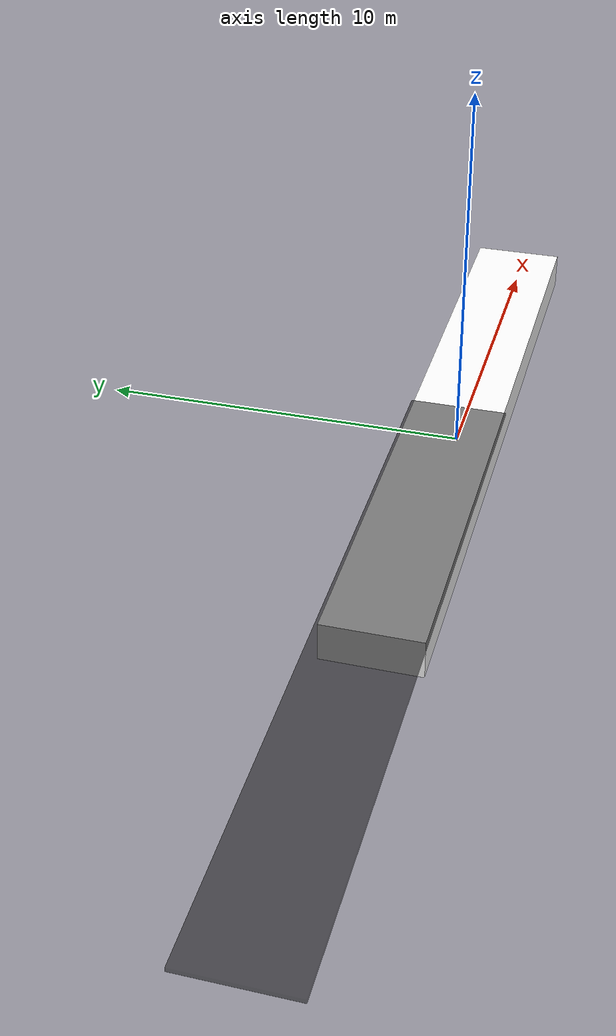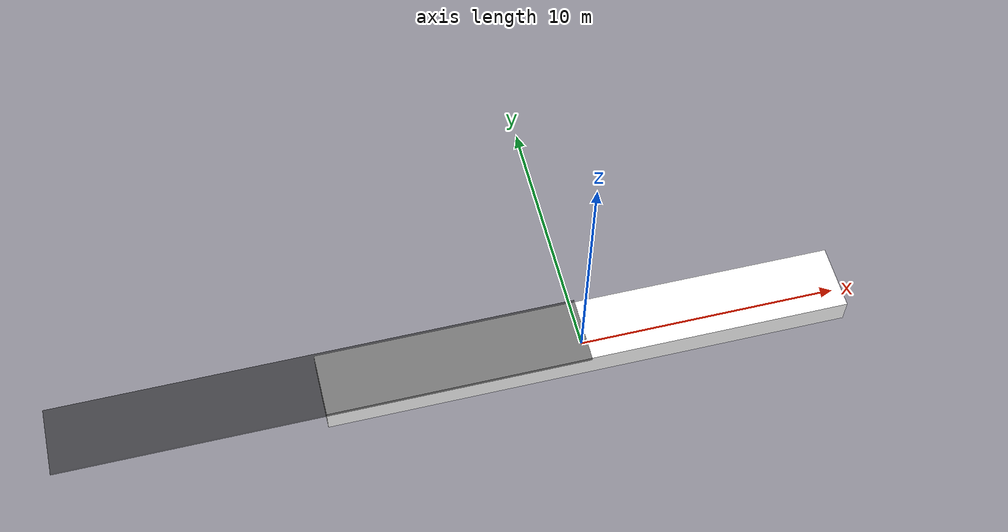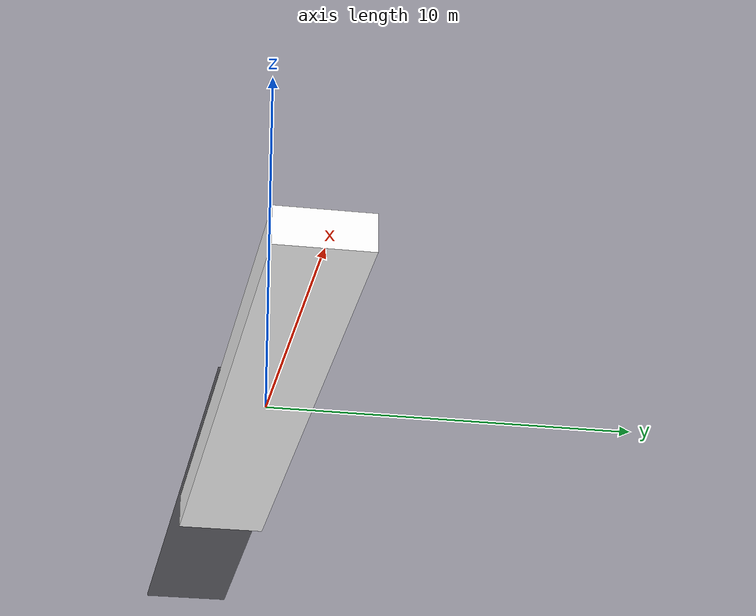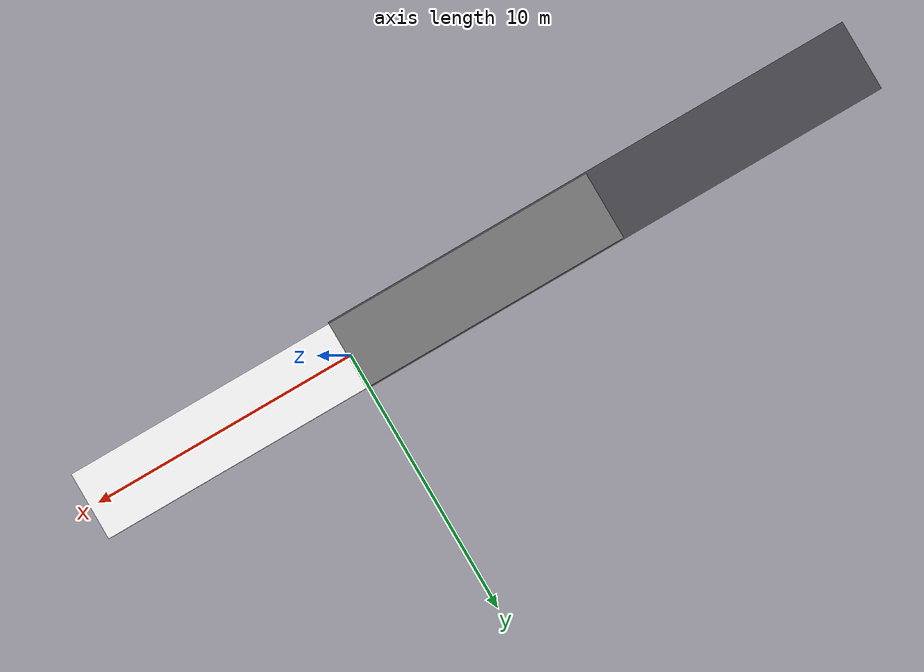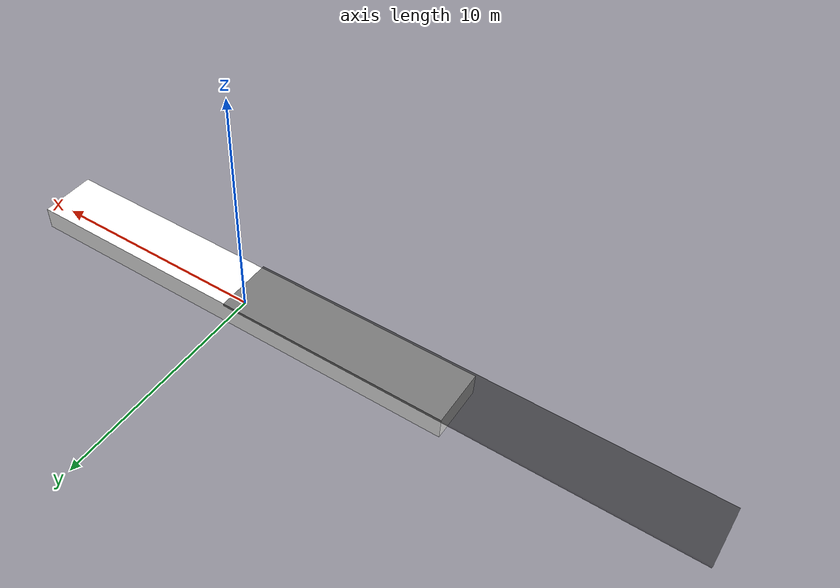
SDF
<?xml version="1.0"?>
<sdf version="1.9">
  <model name="conveyor">

    <!-- Joint to fix conveyor to the world -->
    <joint name="base_joint" type="fixed">
      <parent>world</parent>
      <child>frame</child>
    </joint>

    <!-- Main frame of conveyor -->
    <link name="frame">
      <pose> 0 0 0.5 0 0 0</pose>
      <collision name="frame_collision">
        <geometry>
          <box>
            <size> 20.0 2.5 1 </size>
          </box>
        </geometry>
      </collision>
      <visual name="frame_visual">
        <geometry>
          <box>
            <size> 20.0 2.5 1 </size>
          </box>
        </geometry>
        <material>
          <ambient> 1 1 1 1 </ambient>
          <diffuse> 1 1 1 1 </diffuse>
        </material>
      </visual>
    </link>

    <!-- Moving part of conveyor -->
    <link name="belt">
      <pose> -10 0 1.01 0 0 0 </pose>
      <gravity> 0 </gravity>
      <visual name="belt_visual">
        <geometry>
          <box>
            <size> 20.0 2.6 0.1 </size>
          </box>
        </geometry>
        <!-- Make visible for debug -->
        <material>
          <ambient> 0 0 0 0.5 </ambient>
          <diffuse> 0 0 0 0.5 </diffuse>
        </material>
      </visual>
      <collision name="belt_collision">
        <geometry>
          <box>
            <size> 20.0 2.6 0.1 </size>
          </box>
        </geometry>
        <surface>
          <friction>
            <ode>
              <mu> 100 </mu>
              <mu2> 100 </mu2>
            </ode>
          </friction>
        </surface>
      </collision>
    </link>

    <joint name="belt_joint" type="prismatic">
      <parent> world </parent>
      <child> belt </child>
      <axis>
        <xyz> 1 0 0 </xyz>
      </axis>
    </joint>

    <plugin
      filename="gz-sim-joint-controller-system"
      name="gz::sim::systems::JointController">
      <joint_name>belt_joint</joint_name>
      <initial_velocity>1.0</initial_velocity>
      <topic>belt_vel</topic>
    </plugin>

    <plugin
      filename="gz-sim-joint-state-publisher-system"
      name="gz::sim::systems::JointStatePublisher">
      <joint_name>belt_joint</joint_name>
    </plugin>

  </model>
</sdf>
